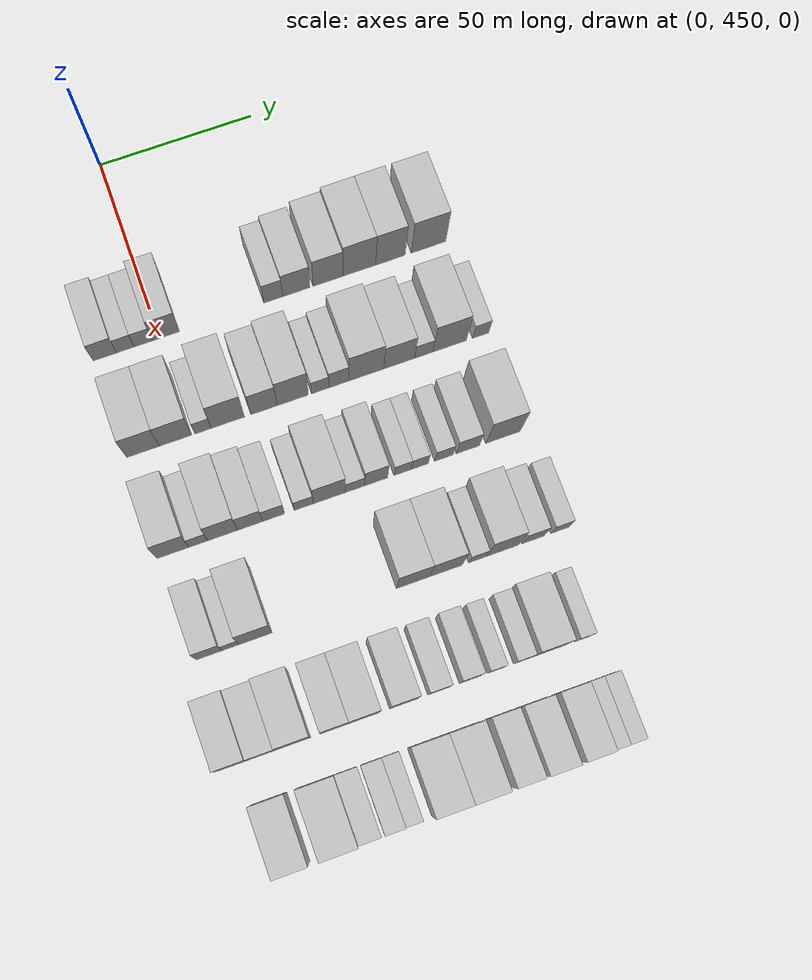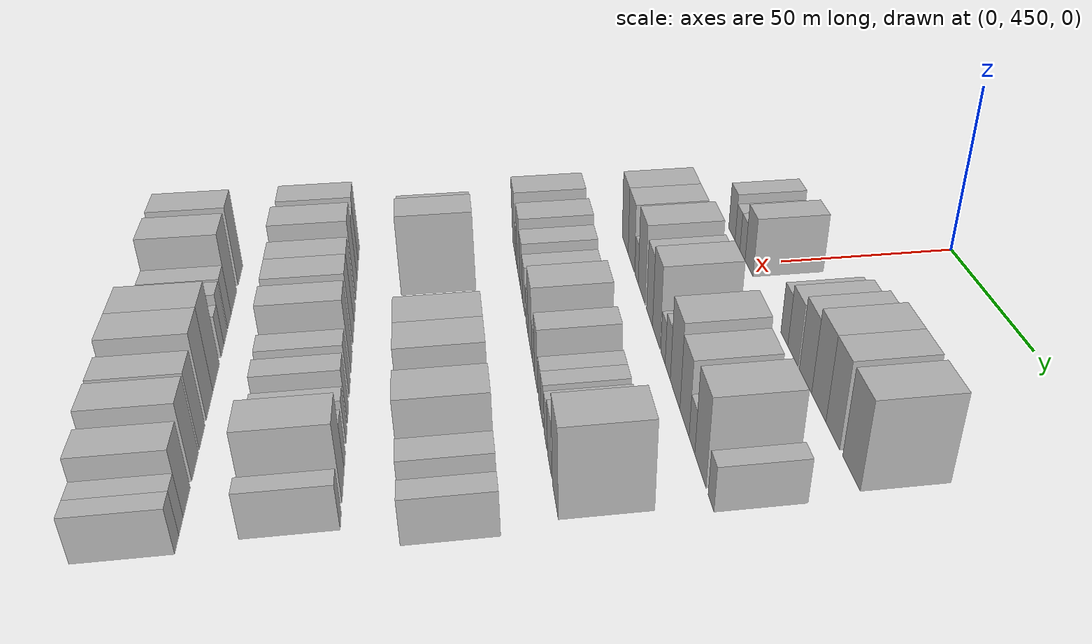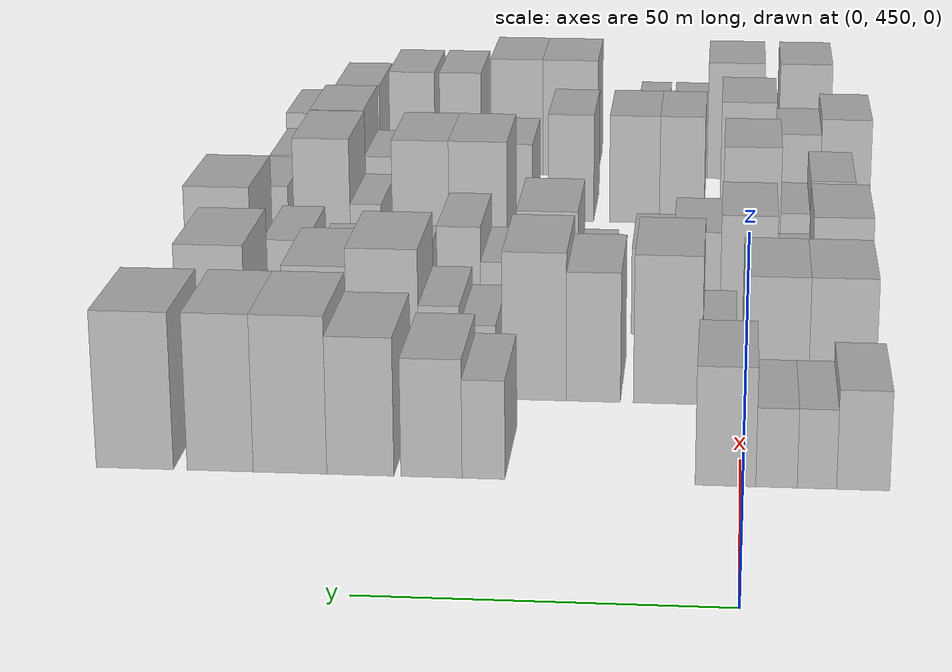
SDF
<sdf version="1.6">
 <world name="default">
  <model name="building_107">
   <static>1</static>
   <pose>50.0000 432.6618 0 0.000000 0.000000 0.000000</pose>
   <link name="link">
    <pose>0 0 7.50 0 0 0</pose>
    <collision name="collision"><geometry><box><size>20.0000 7.4876 15.0000</size></box></geometry></collision>
    <visual name="visual">
     <cast_shadows>0</cast_shadows>
     <geometry><box><size>20.0000 7.4876 15.0000</size></box></geometry>
     <material>
      <script>
       <uri>model://HANNAS_wall/materials/scripts</uri>
       <uri>model://HANNAS_wall/materials/textures</uri>
       <name>vrc/HANNAS_wall</name>
      </script>
     </material>
    </visual>
   </link>
  </model>
  <model name="building_108">
   <static>1</static>
   <pose>50.0000 439.1851 0 0.000000 0.000000 0.000000</pose>
   <link name="link">
    <pose>0 0 6.00 0 0 0</pose>
    <collision name="collision"><geometry><box><size>20.0000 5.5591 12.0000</size></box></geometry></collision>
    <visual name="visual">
     <cast_shadows>0</cast_shadows>
     <geometry><box><size>20.0000 5.5591 12.0000</size></box></geometry>
     <material>
      <script>
       <uri>model://HANNAS_wall/materials/scripts</uri>
       <uri>model://HANNAS_wall/materials/textures</uri>
       <name>vrc/HANNAS_wall</name>
      </script>
     </material>
    </visual>
   </link>
  </model>
  <model name="building_109">
   <static>1</static>
   <pose>50.0000 444.8984 0 0.000000 0.000000 0.000000</pose>
   <link name="link">
    <pose>0 0 6.00 0 0 0</pose>
    <collision name="collision"><geometry><box><size>20.0000 5.8676 12.0000</size></box></geometry></collision>
    <visual name="visual">
     <cast_shadows>0</cast_shadows>
     <geometry><box><size>20.0000 5.8676 12.0000</size></box></geometry>
     <material>
      <script>
       <uri>model://HANNAS_wall/materials/scripts</uri>
       <uri>model://HANNAS_wall/materials/textures</uri>
       <name>vrc/HANNAS_wall</name>
      </script>
     </material>
    </visual>
   </link>
  </model>
  <model name="building_110">
   <static>1</static>
   <pose>50.0000 452.1269 0 0.000000 0.000000 0.000000</pose>
   <link name="link">
    <pose>0 0 9.00 0 0 0</pose>
    <collision name="collision"><geometry><box><size>20.0000 8.5894 18.0000</size></box></geometry></collision>
    <visual name="visual">
     <cast_shadows>0</cast_shadows>
     <geometry><box><size>20.0000 8.5894 18.0000</size></box></geometry>
     <material>
      <script>
       <uri>model://HANNAS_wall/materials/scripts</uri>
       <uri>model://HANNAS_wall/materials/textures</uri>
       <name>vrc/HANNAS_wall</name>
      </script>
     </material>
    </visual>
   </link>
  </model>
  <model name="building_111">
   <static>1</static>
   <pose>50.0000 486.6656 0 0.000000 0.000000 0.000000</pose>
   <link name="link">
    <pose>0 0 7.50 0 0 0</pose>
    <collision name="collision"><geometry><box><size>20.0000 6.1626 15.0000</size></box></geometry></collision>
    <visual name="visual">
     <cast_shadows>0</cast_shadows>
     <geometry><box><size>20.0000 6.1626 15.0000</size></box></geometry>
     <material>
      <script>
       <uri>model://HANNAS_wall/materials/scripts</uri>
       <uri>model://HANNAS_wall/materials/textures</uri>
       <name>vrc/HANNAS_wall</name>
      </script>
     </material>
    </visual>
   </link>
  </model>
  <model name="building_112">
   <static>1</static>
   <pose>50.0000 494.1600 0 0.000000 0.000000 0.000000</pose>
   <link name="link">
    <pose>0 0 9.00 0 0 0</pose>
    <collision name="collision"><geometry><box><size>20.0000 8.8261 18.0000</size></box></geometry></collision>
    <visual name="visual">
     <cast_shadows>0</cast_shadows>
     <geometry><box><size>20.0000 8.8261 18.0000</size></box></geometry>
     <material>
      <script>
       <uri>model://HANNAS_wall/materials/scripts</uri>
       <uri>model://HANNAS_wall/materials/textures</uri>
       <name>vrc/HANNAS_wall</name>
      </script>
     </material>
    </visual>
   </link>
  </model>
  <model name="building_113">
   <static>1</static>
   <pose>50.0000 504.4298 0 0.000000 0.000000 0.000000</pose>
   <link name="link">
    <pose>0 0 10.50 0 0 0</pose>
    <collision name="collision"><geometry><box><size>20.0000 9.7135 21.0000</size></box></geometry></collision>
    <visual name="visual">
     <cast_shadows>0</cast_shadows>
     <geometry><box><size>20.0000 9.7135 21.0000</size></box></geometry>
     <material>
      <script>
       <uri>model://HANNAS_wall/materials/scripts</uri>
       <uri>model://HANNAS_wall/materials/textures</uri>
       <name>vrc/HANNAS_wall</name>
      </script>
     </material>
    </visual>
   </link>
  </model>
  <model name="building_114">
   <static>1</static>
   <pose>50.0000 514.6332 0 0.000000 0.000000 0.000000</pose>
   <link name="link">
    <pose>0 0 12.00 0 0 0</pose>
    <collision name="collision"><geometry><box><size>20.0000 10.6934 24.0000</size></box></geometry></collision>
    <visual name="visual">
     <cast_shadows>0</cast_shadows>
     <geometry><box><size>20.0000 10.6934 24.0000</size></box></geometry>
     <material>
      <script>
       <uri>model://HANNAS_wall/materials/scripts</uri>
       <uri>model://HANNAS_wall/materials/textures</uri>
       <name>vrc/HANNAS_wall</name>
      </script>
     </material>
    </visual>
   </link>
  </model>
  <model name="building_115">
   <static>1</static>
   <pose>50.0000 524.8079 0 0.000000 0.000000 0.000000</pose>
   <link name="link">
    <pose>0 0 12.00 0 0 0</pose>
    <collision name="collision"><geometry><box><size>20.0000 9.6559 24.0000</size></box></geometry></collision>
    <visual name="visual">
     <cast_shadows>0</cast_shadows>
     <geometry><box><size>20.0000 9.6559 24.0000</size></box></geometry>
     <material>
      <script>
       <uri>model://HANNAS_wall/materials/scripts</uri>
       <uri>model://HANNAS_wall/materials/textures</uri>
       <name>vrc/HANNAS_wall</name>
      </script>
     </material>
    </visual>
   </link>
  </model>
  <model name="building_116">
   <static>1</static>
   <pose>50.0000 537.2994 0 0.000000 0.000000 0.000000</pose>
   <link name="link">
    <pose>0 0 12.00 0 0 0</pose>
    <collision name="collision"><geometry><box><size>20.0000 11.3273 24.0000</size></box></geometry></collision>
    <visual name="visual">
     <cast_shadows>0</cast_shadows>
     <geometry><box><size>20.0000 11.3273 24.0000</size></box></geometry>
     <material>
      <script>
       <uri>model://HANNAS_wall/materials/scripts</uri>
       <uri>model://HANNAS_wall/materials/textures</uri>
       <name>vrc/HANNAS_wall</name>
      </script>
     </material>
    </visual>
   </link>
  </model>
  <model name="building_225">
   <static>1</static>
   <pose>82.0000 434.5215 0 0.000000 0.000000 0.000000</pose>
   <link name="link">
    <pose>0 0 10.50 0 0 0</pose>
    <collision name="collision"><geometry><box><size>20.0000 10.2824 21.0000</size></box></geometry></collision>
    <visual name="visual">
     <cast_shadows>0</cast_shadows>
     <geometry><box><size>20.0000 10.2824 21.0000</size></box></geometry>
     <material>
      <script>
       <uri>model://HANNAS_wall/materials/scripts</uri>
       <uri>model://HANNAS_wall/materials/textures</uri>
       <name>vrc/HANNAS_wall</name>
      </script>
     </material>
    </visual>
   </link>
  </model>
  <model name="building_226">
   <static>1</static>
   <pose>82.0000 444.7343 0 0.000000 0.000000 0.000000</pose>
   <link name="link">
    <pose>0 0 10.50 0 0 0</pose>
    <collision name="collision"><geometry><box><size>20.0000 10.1432 21.0000</size></box></geometry></collision>
    <visual name="visual">
     <cast_shadows>0</cast_shadows>
     <geometry><box><size>20.0000 10.1432 21.0000</size></box></geometry>
     <material>
      <script>
       <uri>model://HANNAS_wall/materials/scripts</uri>
       <uri>model://HANNAS_wall/materials/textures</uri>
       <name>vrc/HANNAS_wall</name>
      </script>
     </material>
    </visual>
   </link>
  </model>
  <model name="building_227">
   <static>1</static>
   <pose>82.0000 453.3990 0 0.000000 0.000000 0.000000</pose>
   <link name="link">
    <pose>0 0 6.00 0 0 0</pose>
    <collision name="collision"><geometry><box><size>20.0000 5.1863 12.0000</size></box></geometry></collision>
    <visual name="visual">
     <cast_shadows>0</cast_shadows>
     <geometry><box><size>20.0000 5.1863 12.0000</size></box></geometry>
     <material>
      <script>
       <uri>model://HANNAS_wall/materials/scripts</uri>
       <uri>model://HANNAS_wall/materials/textures</uri>
       <name>vrc/HANNAS_wall</name>
      </script>
     </material>
    </visual>
   </link>
  </model>
  <model name="building_228">
   <static>1</static>
   <pose>82.0000 461.2536 0 0.000000 0.000000 0.000000</pose>
   <link name="link">
    <pose>0 0 12.00 0 0 0</pose>
    <collision name="collision"><geometry><box><size>20.0000 10.5230 24.0000</size></box></geometry></collision>
    <visual name="visual">
     <cast_shadows>0</cast_shadows>
     <geometry><box><size>20.0000 10.5230 24.0000</size></box></geometry>
     <material>
      <script>
       <uri>model://HANNAS_wall/materials/scripts</uri>
       <uri>model://HANNAS_wall/materials/textures</uri>
       <name>vrc/HANNAS_wall</name>
      </script>
     </material>
    </visual>
   </link>
  </model>
  <model name="building_229">
   <static>1</static>
   <pose>82.0000 472.7178 0 0.000000 0.000000 0.000000</pose>
   <link name="link">
    <pose>0 0 10.50 0 0 0</pose>
    <collision name="collision"><geometry><box><size>20.0000 8.4054 21.0000</size></box></geometry></collision>
    <visual name="visual">
     <cast_shadows>0</cast_shadows>
     <geometry><box><size>20.0000 8.4054 21.0000</size></box></geometry>
     <material>
      <script>
       <uri>model://HANNAS_wall/materials/scripts</uri>
       <uri>model://HANNAS_wall/materials/textures</uri>
       <name>vrc/HANNAS_wall</name>
      </script>
     </material>
    </visual>
   </link>
  </model>
  <model name="building_230">
   <static>1</static>
   <pose>82.0000 481.8896 0 0.000000 0.000000 0.000000</pose>
   <link name="link">
    <pose>0 0 12.00 0 0 0</pose>
    <collision name="collision"><geometry><box><size>20.0000 9.9382 24.0000</size></box></geometry></collision>
    <visual name="visual">
     <cast_shadows>0</cast_shadows>
     <geometry><box><size>20.0000 9.9382 24.0000</size></box></geometry>
     <material>
      <script>
       <uri>model://HANNAS_wall/materials/scripts</uri>
       <uri>model://HANNAS_wall/materials/textures</uri>
       <name>vrc/HANNAS_wall</name>
      </script>
     </material>
    </visual>
   </link>
  </model>
  <model name="building_231">
   <static>1</static>
   <pose>82.0000 490.6509 0 0.000000 0.000000 0.000000</pose>
   <link name="link">
    <pose>0 0 6.00 0 0 0</pose>
    <collision name="collision"><geometry><box><size>20.0000 5.5843 12.0000</size></box></geometry></collision>
    <visual name="visual">
     <cast_shadows>0</cast_shadows>
     <geometry><box><size>20.0000 5.5843 12.0000</size></box></geometry>
     <material>
      <script>
       <uri>model://HANNAS_wall/materials/scripts</uri>
       <uri>model://HANNAS_wall/materials/textures</uri>
       <name>vrc/HANNAS_wall</name>
      </script>
     </material>
    </visual>
   </link>
  </model>
  <model name="building_232">
   <static>1</static>
   <pose>82.0000 496.6389 0 0.000000 0.000000 0.000000</pose>
   <link name="link">
    <pose>0 0 7.50 0 0 0</pose>
    <collision name="collision"><geometry><box><size>20.0000 6.3917 15.0000</size></box></geometry></collision>
    <visual name="visual">
     <cast_shadows>0</cast_shadows>
     <geometry><box><size>20.0000 6.3917 15.0000</size></box></geometry>
     <material>
      <script>
       <uri>model://HANNAS_wall/materials/scripts</uri>
       <uri>model://HANNAS_wall/materials/textures</uri>
       <name>vrc/HANNAS_wall</name>
      </script>
     </material>
    </visual>
   </link>
  </model>
  <model name="building_233">
   <static>1</static>
   <pose>82.0000 505.4357 0 0.000000 0.000000 0.000000</pose>
   <link name="link">
    <pose>0 0 12.00 0 0 0</pose>
    <collision name="collision"><geometry><box><size>20.0000 11.2019 24.0000</size></box></geometry></collision>
    <visual name="visual">
     <cast_shadows>0</cast_shadows>
     <geometry><box><size>20.0000 11.2019 24.0000</size></box></geometry>
     <material>
      <script>
       <uri>model://HANNAS_wall/materials/scripts</uri>
       <uri>model://HANNAS_wall/materials/textures</uri>
       <name>vrc/HANNAS_wall</name>
      </script>
     </material>
    </visual>
   </link>
  </model>
  <model name="building_234">
   <static>1</static>
   <pose>82.0000 516.0133 0 0.000000 0.000000 0.000000</pose>
   <link name="link">
    <pose>0 0 10.50 0 0 0</pose>
    <collision name="collision"><geometry><box><size>20.0000 9.9533 21.0000</size></box></geometry></collision>
    <visual name="visual">
     <cast_shadows>0</cast_shadows>
     <geometry><box><size>20.0000 9.9533 21.0000</size></box></geometry>
     <material>
      <script>
       <uri>model://HANNAS_wall/materials/scripts</uri>
       <uri>model://HANNAS_wall/materials/textures</uri>
       <name>vrc/HANNAS_wall</name>
      </script>
     </material>
    </visual>
   </link>
  </model>
  <model name="building_235">
   <static>1</static>
   <pose>82.0000 523.9376 0 0.000000 0.000000 0.000000</pose>
   <link name="link">
    <pose>0 0 6.00 0 0 0</pose>
    <collision name="collision"><geometry><box><size>20.0000 5.8953 12.0000</size></box></geometry></collision>
    <visual name="visual">
     <cast_shadows>0</cast_shadows>
     <geometry><box><size>20.0000 5.8953 12.0000</size></box></geometry>
     <material>
      <script>
       <uri>model://HANNAS_wall/materials/scripts</uri>
       <uri>model://HANNAS_wall/materials/textures</uri>
       <name>vrc/HANNAS_wall</name>
      </script>
     </material>
    </visual>
   </link>
  </model>
  <model name="building_236">
   <static>1</static>
   <pose>82.0000 532.3138 0 0.000000 0.000000 0.000000</pose>
   <link name="link">
    <pose>0 0 12.00 0 0 0</pose>
    <collision name="collision"><geometry><box><size>20.0000 10.8572 24.0000</size></box></geometry></collision>
    <visual name="visual">
     <cast_shadows>0</cast_shadows>
     <geometry><box><size>20.0000 10.8572 24.0000</size></box></geometry>
     <material>
      <script>
       <uri>model://HANNAS_wall/materials/scripts</uri>
       <uri>model://HANNAS_wall/materials/textures</uri>
       <name>vrc/HANNAS_wall</name>
      </script>
     </material>
    </visual>
   </link>
  </model>
  <model name="building_237">
   <static>1</static>
   <pose>82.0000 542.3658 0 0.000000 0.000000 0.000000</pose>
   <link name="link">
    <pose>0 0 6.00 0 0 0</pose>
    <collision name="collision"><geometry><box><size>20.0000 5.2468 12.0000</size></box></geometry></collision>
    <visual name="visual">
     <cast_shadows>0</cast_shadows>
     <geometry><box><size>20.0000 5.2468 12.0000</size></box></geometry>
     <material>
      <script>
       <uri>model://HANNAS_wall/materials/scripts</uri>
       <uri>model://HANNAS_wall/materials/textures</uri>
       <name>vrc/HANNAS_wall</name>
      </script>
     </material>
    </visual>
   </link>
  </model>
  <model name="building_342">
   <static>1</static>
   <pose>114.0000 433.4911 0 0.000000 0.000000 0.000000</pose>
   <link name="link">
    <pose>0 0 10.50 0 0 0</pose>
    <collision name="collision"><geometry><box><size>20.0000 9.8283 21.0000</size></box></geometry></collision>
    <visual name="visual">
     <cast_shadows>0</cast_shadows>
     <geometry><box><size>20.0000 9.8283 21.0000</size></box></geometry>
     <material>
      <script>
       <uri>model://HANNAS_wall/materials/scripts</uri>
       <uri>model://HANNAS_wall/materials/textures</uri>
       <name>vrc/HANNAS_wall</name>
      </script>
     </material>
    </visual>
   </link>
  </model>
  <model name="building_343">
   <static>1</static>
   <pose>114.0000 441.3180 0 0.000000 0.000000 0.000000</pose>
   <link name="link">
    <pose>0 0 6.00 0 0 0</pose>
    <collision name="collision"><geometry><box><size>20.0000 5.8255 12.0000</size></box></geometry></collision>
    <visual name="visual">
     <cast_shadows>0</cast_shadows>
     <geometry><box><size>20.0000 5.8255 12.0000</size></box></geometry>
     <material>
      <script>
       <uri>model://HANNAS_wall/materials/scripts</uri>
       <uri>model://HANNAS_wall/materials/textures</uri>
       <name>vrc/HANNAS_wall</name>
      </script>
     </material>
    </visual>
   </link>
  </model>
  <model name="building_344">
   <static>1</static>
   <pose>114.0000 448.8586 0 0.000000 0.000000 0.000000</pose>
   <link name="link">
    <pose>0 0 10.50 0 0 0</pose>
    <collision name="collision"><geometry><box><size>20.0000 9.2557 21.0000</size></box></geometry></collision>
    <visual name="visual">
     <cast_shadows>0</cast_shadows>
     <geometry><box><size>20.0000 9.2557 21.0000</size></box></geometry>
     <material>
      <script>
       <uri>model://HANNAS_wall/materials/scripts</uri>
       <uri>model://HANNAS_wall/materials/textures</uri>
       <name>vrc/HANNAS_wall</name>
      </script>
     </material>
    </visual>
   </link>
  </model>
  <model name="building_345">
   <static>1</static>
   <pose>114.0000 457.4132 0 0.000000 0.000000 0.000000</pose>
   <link name="link">
    <pose>0 0 9.00 0 0 0</pose>
    <collision name="collision"><geometry><box><size>20.0000 7.8535 18.0000</size></box></geometry></collision>
    <visual name="visual">
     <cast_shadows>0</cast_shadows>
     <geometry><box><size>20.0000 7.8535 18.0000</size></box></geometry>
     <material>
      <script>
       <uri>model://HANNAS_wall/materials/scripts</uri>
       <uri>model://HANNAS_wall/materials/textures</uri>
       <name>vrc/HANNAS_wall</name>
      </script>
     </material>
    </visual>
   </link>
  </model>
  <model name="building_346">
   <static>1</static>
   <pose>114.0000 464.7631 0 0.000000 0.000000 0.000000</pose>
   <link name="link">
    <pose>0 0 7.50 0 0 0</pose>
    <collision name="collision"><geometry><box><size>20.0000 6.8462 15.0000</size></box></geometry></collision>
    <visual name="visual">
     <cast_shadows>0</cast_shadows>
     <geometry><box><size>20.0000 6.8462 15.0000</size></box></geometry>
     <material>
      <script>
       <uri>model://HANNAS_wall/materials/scripts</uri>
       <uri>model://HANNAS_wall/materials/textures</uri>
       <name>vrc/HANNAS_wall</name>
      </script>
     </material>
    </visual>
   </link>
  </model>
  <model name="building_347">
   <static>1</static>
   <pose>114.0000 474.1584 0 0.000000 0.000000 0.000000</pose>
   <link name="link">
    <pose>0 0 6.00 0 0 0</pose>
    <collision name="collision"><geometry><box><size>20.0000 5.9444 12.0000</size></box></geometry></collision>
    <visual name="visual">
     <cast_shadows>0</cast_shadows>
     <geometry><box><size>20.0000 5.9444 12.0000</size></box></geometry>
     <material>
      <script>
       <uri>model://HANNAS_wall/materials/scripts</uri>
       <uri>model://HANNAS_wall/materials/textures</uri>
       <name>vrc/HANNAS_wall</name>
      </script>
     </material>
    </visual>
   </link>
  </model>
  <model name="building_348">
   <static>1</static>
   <pose>114.0000 482.2436 0 0.000000 0.000000 0.000000</pose>
   <link name="link">
    <pose>0 0 10.50 0 0 0</pose>
    <collision name="collision"><geometry><box><size>20.0000 10.2260 21.0000</size></box></geometry></collision>
    <visual name="visual">
     <cast_shadows>0</cast_shadows>
     <geometry><box><size>20.0000 10.2260 21.0000</size></box></geometry>
     <material>
      <script>
       <uri>model://HANNAS_wall/materials/scripts</uri>
       <uri>model://HANNAS_wall/materials/textures</uri>
       <name>vrc/HANNAS_wall</name>
      </script>
     </material>
    </visual>
   </link>
  </model>
  <model name="building_349">
   <static>1</static>
   <pose>114.0000 490.3469 0 0.000000 0.000000 0.000000</pose>
   <link name="link">
    <pose>0 0 6.00 0 0 0</pose>
    <collision name="collision"><geometry><box><size>20.0000 5.9806 12.0000</size></box></geometry></collision>
    <visual name="visual">
     <cast_shadows>0</cast_shadows>
     <geometry><box><size>20.0000 5.9806 12.0000</size></box></geometry>
     <material>
      <script>
       <uri>model://HANNAS_wall/materials/scripts</uri>
       <uri>model://HANNAS_wall/materials/textures</uri>
       <name>vrc/HANNAS_wall</name>
      </script>
     </material>
    </visual>
   </link>
  </model>
  <model name="building_350">
   <static>1</static>
   <pose>114.0000 496.9845 0 0.000000 0.000000 0.000000</pose>
   <link name="link">
    <pose>0 0 9.00 0 0 0</pose>
    <collision name="collision"><geometry><box><size>20.0000 7.2946 18.0000</size></box></geometry></collision>
    <visual name="visual">
     <cast_shadows>0</cast_shadows>
     <geometry><box><size>20.0000 7.2946 18.0000</size></box></geometry>
     <material>
      <script>
       <uri>model://HANNAS_wall/materials/scripts</uri>
       <uri>model://HANNAS_wall/materials/textures</uri>
       <name>vrc/HANNAS_wall</name>
      </script>
     </material>
    </visual>
   </link>
  </model>
  <model name="building_351">
   <static>1</static>
   <pose>114.0000 505.4055 0 0.000000 0.000000 0.000000</pose>
   <link name="link">
    <pose>0 0 6.00 0 0 0</pose>
    <collision name="collision"><geometry><box><size>20.0000 5.5473 12.0000</size></box></geometry></collision>
    <visual name="visual">
     <cast_shadows>0</cast_shadows>
     <geometry><box><size>20.0000 5.5473 12.0000</size></box></geometry>
     <material>
      <script>
       <uri>model://HANNAS_wall/materials/scripts</uri>
       <uri>model://HANNAS_wall/materials/textures</uri>
       <name>vrc/HANNAS_wall</name>
      </script>
     </material>
    </visual>
   </link>
  </model>
  <model name="building_352">
   <static>1</static>
   <pose>114.0000 510.8718 0 0.000000 0.000000 0.000000</pose>
   <link name="link">
    <pose>0 0 6.00 0 0 0</pose>
    <collision name="collision"><geometry><box><size>20.0000 5.3852 12.0000</size></box></geometry></collision>
    <visual name="visual">
     <cast_shadows>0</cast_shadows>
     <geometry><box><size>20.0000 5.3852 12.0000</size></box></geometry>
     <material>
      <script>
       <uri>model://HANNAS_wall/materials/scripts</uri>
       <uri>model://HANNAS_wall/materials/textures</uri>
       <name>vrc/HANNAS_wall</name>
      </script>
     </material>
    </visual>
   </link>
  </model>
  <model name="building_353">
   <static>1</static>
   <pose>114.0000 518.5120 0 0.000000 0.000000 0.000000</pose>
   <link name="link">
    <pose>0 0 6.00 0 0 0</pose>
    <collision name="collision"><geometry><box><size>20.0000 5.8952 12.0000</size></box></geometry></collision>
    <visual name="visual">
     <cast_shadows>0</cast_shadows>
     <geometry><box><size>20.0000 5.8952 12.0000</size></box></geometry>
     <material>
      <script>
       <uri>model://HANNAS_wall/materials/scripts</uri>
       <uri>model://HANNAS_wall/materials/textures</uri>
       <name>vrc/HANNAS_wall</name>
      </script>
     </material>
    </visual>
   </link>
  </model>
  <model name="building_354">
   <static>1</static>
   <pose>114.0000 526.1745 0 0.000000 0.000000 0.000000</pose>
   <link name="link">
    <pose>0 0 7.50 0 0 0</pose>
    <collision name="collision"><geometry><box><size>20.0000 7.4298 15.0000</size></box></geometry></collision>
    <visual name="visual">
     <cast_shadows>0</cast_shadows>
     <geometry><box><size>20.0000 7.4298 15.0000</size></box></geometry>
     <material>
      <script>
       <uri>model://HANNAS_wall/materials/scripts</uri>
       <uri>model://HANNAS_wall/materials/textures</uri>
       <name>vrc/HANNAS_wall</name>
      </script>
     </material>
    </visual>
   </link>
  </model>
  <model name="building_355">
   <static>1</static>
   <pose>114.0000 537.4247 0 0.000000 0.000000 0.000000</pose>
   <link name="link">
    <pose>0 0 12.00 0 0 0</pose>
    <collision name="collision"><geometry><box><size>20.0000 11.0706 24.0000</size></box></geometry></collision>
    <visual name="visual">
     <cast_shadows>0</cast_shadows>
     <geometry><box><size>20.0000 11.0706 24.0000</size></box></geometry>
     <material>
      <script>
       <uri>model://HANNAS_wall/materials/scripts</uri>
       <uri>model://HANNAS_wall/materials/textures</uri>
       <name>vrc/HANNAS_wall</name>
      </script>
     </material>
    </visual>
   </link>
  </model>
  <model name="building_460">
   <static>1</static>
   <pose>146.0000 434.0739 0 0.000000 0.000000 0.000000</pose>
   <link name="link">
    <pose>0 0 9.00 0 0 0</pose>
    <collision name="collision"><geometry><box><size>20.0000 7.8460 18.0000</size></box></geometry></collision>
    <visual name="visual">
     <cast_shadows>0</cast_shadows>
     <geometry><box><size>20.0000 7.8460 18.0000</size></box></geometry>
     <material>
      <script>
       <uri>model://HANNAS_wall/materials/scripts</uri>
       <uri>model://HANNAS_wall/materials/textures</uri>
       <name>vrc/HANNAS_wall</name>
      </script>
     </material>
    </visual>
   </link>
  </model>
  <model name="building_461">
   <static>1</static>
   <pose>146.0000 440.5929 0 0.000000 0.000000 0.000000</pose>
   <link name="link">
    <pose>0 0 6.00 0 0 0</pose>
    <collision name="collision"><geometry><box><size>20.0000 5.1919 12.0000</size></box></geometry></collision>
    <visual name="visual">
     <cast_shadows>0</cast_shadows>
     <geometry><box><size>20.0000 5.1919 12.0000</size></box></geometry>
     <material>
      <script>
       <uri>model://HANNAS_wall/materials/scripts</uri>
       <uri>model://HANNAS_wall/materials/textures</uri>
       <name>vrc/HANNAS_wall</name>
      </script>
     </material>
    </visual>
   </link>
  </model>
  <model name="building_462">
   <static>1</static>
   <pose>146.0000 448.2383 0 0.000000 0.000000 0.000000</pose>
   <link name="link">
    <pose>0 0 12.00 0 0 0</pose>
    <collision name="collision"><geometry><box><size>20.0000 10.0990 24.0000</size></box></geometry></collision>
    <visual name="visual">
     <cast_shadows>0</cast_shadows>
     <geometry><box><size>20.0000 10.0990 24.0000</size></box></geometry>
     <material>
      <script>
       <uri>model://HANNAS_wall/materials/scripts</uri>
       <uri>model://HANNAS_wall/materials/textures</uri>
       <name>vrc/HANNAS_wall</name>
      </script>
     </material>
    </visual>
   </link>
  </model>
  <model name="building_463">
   <static>1</static>
   <pose>146.0000 496.9704 0 0.000000 0.000000 0.000000</pose>
   <link name="link">
    <pose>0 0 12.00 0 0 0</pose>
    <collision name="collision"><geometry><box><size>20.0000 10.4551 24.0000</size></box></geometry></collision>
    <visual name="visual">
     <cast_shadows>0</cast_shadows>
     <geometry><box><size>20.0000 10.4551 24.0000</size></box></geometry>
     <material>
      <script>
       <uri>model://HANNAS_wall/materials/scripts</uri>
       <uri>model://HANNAS_wall/materials/textures</uri>
       <name>vrc/HANNAS_wall</name>
      </script>
     </material>
    </visual>
   </link>
  </model>
  <model name="building_464">
   <static>1</static>
   <pose>146.0000 507.2742 0 0.000000 0.000000 0.000000</pose>
   <link name="link">
    <pose>0 0 12.00 0 0 0</pose>
    <collision name="collision"><geometry><box><size>20.0000 10.1525 24.0000</size></box></geometry></collision>
    <visual name="visual">
     <cast_shadows>0</cast_shadows>
     <geometry><box><size>20.0000 10.1525 24.0000</size></box></geometry>
     <material>
      <script>
       <uri>model://HANNAS_wall/materials/scripts</uri>
       <uri>model://HANNAS_wall/materials/textures</uri>
       <name>vrc/HANNAS_wall</name>
      </script>
     </material>
    </visual>
   </link>
  </model>
  <model name="building_465">
   <static>1</static>
   <pose>146.0000 517.1633 0 0.000000 0.000000 0.000000</pose>
   <link name="link">
    <pose>0 0 6.00 0 0 0</pose>
    <collision name="collision"><geometry><box><size>20.0000 5.6256 12.0000</size></box></geometry></collision>
    <visual name="visual">
     <cast_shadows>0</cast_shadows>
     <geometry><box><size>20.0000 5.6256 12.0000</size></box></geometry>
     <material>
      <script>
       <uri>model://HANNAS_wall/materials/scripts</uri>
       <uri>model://HANNAS_wall/materials/textures</uri>
       <name>vrc/HANNAS_wall</name>
      </script>
     </material>
    </visual>
   </link>
  </model>
  <model name="building_466">
   <static>1</static>
   <pose>146.0000 525.0642 0 0.000000 0.000000 0.000000</pose>
   <link name="link">
    <pose>0 0 12.00 0 0 0</pose>
    <collision name="collision"><geometry><box><size>20.0000 10.1762 24.0000</size></box></geometry></collision>
    <visual name="visual">
     <cast_shadows>0</cast_shadows>
     <geometry><box><size>20.0000 10.1762 24.0000</size></box></geometry>
     <material>
      <script>
       <uri>model://HANNAS_wall/materials/scripts</uri>
       <uri>model://HANNAS_wall/materials/textures</uri>
       <name>vrc/HANNAS_wall</name>
      </script>
     </material>
    </visual>
   </link>
  </model>
  <model name="building_467">
   <static>1</static>
   <pose>146.0000 534.6964 0 0.000000 0.000000 0.000000</pose>
   <link name="link">
    <pose>0 0 7.50 0 0 0</pose>
    <collision name="collision"><geometry><box><size>20.0000 7.0880 15.0000</size></box></geometry></collision>
    <visual name="visual">
     <cast_shadows>0</cast_shadows>
     <geometry><box><size>20.0000 7.0880 15.0000</size></box></geometry>
     <material>
      <script>
       <uri>model://HANNAS_wall/materials/scripts</uri>
       <uri>model://HANNAS_wall/materials/textures</uri>
       <name>vrc/HANNAS_wall</name>
      </script>
     </material>
    </visual>
   </link>
  </model>
  <model name="building_468">
   <static>1</static>
   <pose>146.0000 543.1657 0 0.000000 0.000000 0.000000</pose>
   <link name="link">
    <pose>0 0 6.00 0 0 0</pose>
    <collision name="collision"><geometry><box><size>20.0000 5.8506 12.0000</size></box></geometry></collision>
    <visual name="visual">
     <cast_shadows>0</cast_shadows>
     <geometry><box><size>20.0000 5.8506 12.0000</size></box></geometry>
     <material>
      <script>
       <uri>model://HANNAS_wall/materials/scripts</uri>
       <uri>model://HANNAS_wall/materials/textures</uri>
       <name>vrc/HANNAS_wall</name>
      </script>
     </material>
    </visual>
   </link>
  </model>
  <model name="building_576">
   <static>1</static>
   <pose>178.0000 430.4662 0 0.000000 0.000000 0.000000</pose>
   <link name="link">
    <pose>0 0 10.50 0 0 0</pose>
    <collision name="collision"><geometry><box><size>20.0000 9.3795 21.0000</size></box></geometry></collision>
    <visual name="visual">
     <cast_shadows>0</cast_shadows>
     <geometry><box><size>20.0000 9.3795 21.0000</size></box></geometry>
     <material>
      <script>
       <uri>model://HANNAS_wall/materials/scripts</uri>
       <uri>model://HANNAS_wall/materials/textures</uri>
       <name>vrc/HANNAS_wall</name>
      </script>
     </material>
    </visual>
   </link>
  </model>
  <model name="building_577">
   <static>1</static>
   <pose>178.0000 439.4199 0 0.000000 0.000000 0.000000</pose>
   <link name="link">
    <pose>0 0 9.00 0 0 0</pose>
    <collision name="collision"><geometry><box><size>20.0000 8.5279 18.0000</size></box></geometry></collision>
    <visual name="visual">
     <cast_shadows>0</cast_shadows>
     <geometry><box><size>20.0000 8.5279 18.0000</size></box></geometry>
     <material>
      <script>
       <uri>model://HANNAS_wall/materials/scripts</uri>
       <uri>model://HANNAS_wall/materials/textures</uri>
       <name>vrc/HANNAS_wall</name>
      </script>
     </material>
    </visual>
   </link>
  </model>
  <model name="building_578">
   <static>1</static>
   <pose>178.0000 448.8284 0 0.000000 0.000000 0.000000</pose>
   <link name="link">
    <pose>0 0 12.00 0 0 0</pose>
    <collision name="collision"><geometry><box><size>20.0000 10.2892 24.0000</size></box></geometry></collision>
    <visual name="visual">
     <cast_shadows>0</cast_shadows>
     <geometry><box><size>20.0000 10.2892 24.0000</size></box></geometry>
     <material>
      <script>
       <uri>model://HANNAS_wall/materials/scripts</uri>
       <uri>model://HANNAS_wall/materials/textures</uri>
       <name>vrc/HANNAS_wall</name>
      </script>
     </material>
    </visual>
   </link>
  </model>
  <model name="building_579">
   <static>1</static>
   <pose>178.0000 461.2167 0 0.000000 0.000000 0.000000</pose>
   <link name="link">
    <pose>0 0 10.50 0 0 0</pose>
    <collision name="collision"><geometry><box><size>20.0000 8.4873 21.0000</size></box></geometry></collision>
    <visual name="visual">
     <cast_shadows>0</cast_shadows>
     <geometry><box><size>20.0000 8.4873 21.0000</size></box></geometry>
     <material>
      <script>
       <uri>model://HANNAS_wall/materials/scripts</uri>
       <uri>model://HANNAS_wall/materials/textures</uri>
       <name>vrc/HANNAS_wall</name>
      </script>
     </material>
    </visual>
   </link>
  </model>
  <model name="building_580">
   <static>1</static>
   <pose>178.0000 470.2285 0 0.000000 0.000000 0.000000</pose>
   <link name="link">
    <pose>0 0 10.50 0 0 0</pose>
    <collision name="collision"><geometry><box><size>20.0000 9.5364 21.0000</size></box></geometry></collision>
    <visual name="visual">
     <cast_shadows>0</cast_shadows>
     <geometry><box><size>20.0000 9.5364 21.0000</size></box></geometry>
     <material>
      <script>
       <uri>model://HANNAS_wall/materials/scripts</uri>
       <uri>model://HANNAS_wall/materials/textures</uri>
       <name>vrc/HANNAS_wall</name>
      </script>
     </material>
    </visual>
   </link>
  </model>
  <model name="building_581">
   <static>1</static>
   <pose>178.0000 482.3483 0 0.000000 0.000000 0.000000</pose>
   <link name="link">
    <pose>0 0 10.50 0 0 0</pose>
    <collision name="collision"><geometry><box><size>20.0000 8.7032 21.0000</size></box></geometry></collision>
    <visual name="visual">
     <cast_shadows>0</cast_shadows>
     <geometry><box><size>20.0000 8.7032 21.0000</size></box></geometry>
     <material>
      <script>
       <uri>model://HANNAS_wall/materials/scripts</uri>
       <uri>model://HANNAS_wall/materials/textures</uri>
       <name>vrc/HANNAS_wall</name>
      </script>
     </material>
    </visual>
   </link>
  </model>
  <model name="building_582">
   <static>1</static>
   <pose>178.0000 493.0768 0 0.000000 0.000000 0.000000</pose>
   <link name="link">
    <pose>0 0 7.50 0 0 0</pose>
    <collision name="collision"><geometry><box><size>20.0000 6.7538 15.0000</size></box></geometry></collision>
    <visual name="visual">
     <cast_shadows>0</cast_shadows>
     <geometry><box><size>20.0000 6.7538 15.0000</size></box></geometry>
     <material>
      <script>
       <uri>model://HANNAS_wall/materials/scripts</uri>
       <uri>model://HANNAS_wall/materials/textures</uri>
       <name>vrc/HANNAS_wall</name>
      </script>
     </material>
    </visual>
   </link>
  </model>
  <model name="building_583">
   <static>1</static>
   <pose>178.0000 502.7357 0 0.000000 0.000000 0.000000</pose>
   <link name="link">
    <pose>0 0 7.50 0 0 0</pose>
    <collision name="collision"><geometry><box><size>20.0000 6.5640 15.0000</size></box></geometry></collision>
    <visual name="visual">
     <cast_shadows>0</cast_shadows>
     <geometry><box><size>20.0000 6.5640 15.0000</size></box></geometry>
     <material>
      <script>
       <uri>model://HANNAS_wall/materials/scripts</uri>
       <uri>model://HANNAS_wall/materials/textures</uri>
       <name>vrc/HANNAS_wall</name>
      </script>
     </material>
    </visual>
   </link>
  </model>
  <model name="building_584">
   <static>1</static>
   <pose>178.0000 510.6145 0 0.000000 0.000000 0.000000</pose>
   <link name="link">
    <pose>0 0 6.00 0 0 0</pose>
    <collision name="collision"><geometry><box><size>20.0000 5.1936 12.0000</size></box></geometry></collision>
    <visual name="visual">
     <cast_shadows>0</cast_shadows>
     <geometry><box><size>20.0000 5.1936 12.0000</size></box></geometry>
     <material>
      <script>
       <uri>model://HANNAS_wall/materials/scripts</uri>
       <uri>model://HANNAS_wall/materials/textures</uri>
       <name>vrc/HANNAS_wall</name>
      </script>
     </material>
    </visual>
   </link>
  </model>
  <model name="building_585">
   <static>1</static>
   <pose>178.0000 519.1152 0 0.000000 0.000000 0.000000</pose>
   <link name="link">
    <pose>0 0 6.00 0 0 0</pose>
    <collision name="collision"><geometry><box><size>20.0000 5.8079 12.0000</size></box></geometry></collision>
    <visual name="visual">
     <cast_shadows>0</cast_shadows>
     <geometry><box><size>20.0000 5.8079 12.0000</size></box></geometry>
     <material>
      <script>
       <uri>model://HANNAS_wall/materials/scripts</uri>
       <uri>model://HANNAS_wall/materials/textures</uri>
       <name>vrc/HANNAS_wall</name>
      </script>
     </material>
    </visual>
   </link>
  </model>
  <model name="building_586">
   <static>1</static>
   <pose>178.0000 527.1333 0 0.000000 0.000000 0.000000</pose>
   <link name="link">
    <pose>0 0 10.50 0 0 0</pose>
    <collision name="collision"><geometry><box><size>20.0000 10.2283 21.0000</size></box></geometry></collision>
    <visual name="visual">
     <cast_shadows>0</cast_shadows>
     <geometry><box><size>20.0000 10.2283 21.0000</size></box></geometry>
     <material>
      <script>
       <uri>model://HANNAS_wall/materials/scripts</uri>
       <uri>model://HANNAS_wall/materials/textures</uri>
       <name>vrc/HANNAS_wall</name>
      </script>
     </material>
    </visual>
   </link>
  </model>
  <model name="building_587">
   <static>1</static>
   <pose>178.0000 537.6657 0 0.000000 0.000000 0.000000</pose>
   <link name="link">
    <pose>0 0 6.00 0 0 0</pose>
    <collision name="collision"><geometry><box><size>20.0000 4.8365 12.0000</size></box></geometry></collision>
    <visual name="visual">
     <cast_shadows>0</cast_shadows>
     <geometry><box><size>20.0000 4.8365 12.0000</size></box></geometry>
     <material>
      <script>
       <uri>model://HANNAS_wall/materials/scripts</uri>
       <uri>model://HANNAS_wall/materials/textures</uri>
       <name>vrc/HANNAS_wall</name>
      </script>
     </material>
    </visual>
   </link>
  </model>
  <model name="building_693">
   <static>1</static>
   <pose>210.0000 437.3504 0 0.000000 0.000000 0.000000</pose>
   <link name="link">
    <pose>0 0 12.00 0 0 0</pose>
    <collision name="collision"><geometry><box><size>20.0000 10.3813 24.0000</size></box></geometry></collision>
    <visual name="visual">
     <cast_shadows>0</cast_shadows>
     <geometry><box><size>20.0000 10.3813 24.0000</size></box></geometry>
     <material>
      <script>
       <uri>model://HANNAS_wall/materials/scripts</uri>
       <uri>model://HANNAS_wall/materials/textures</uri>
       <name>vrc/HANNAS_wall</name>
      </script>
     </material>
    </visual>
   </link>
  </model>
  <model name="building_694">
   <static>1</static>
   <pose>210.0000 451.1724 0 0.000000 0.000000 0.000000</pose>
   <link name="link">
    <pose>0 0 12.00 0 0 0</pose>
    <collision name="collision"><geometry><box><size>20.0000 11.2627 24.0000</size></box></geometry></collision>
    <visual name="visual">
     <cast_shadows>0</cast_shadows>
     <geometry><box><size>20.0000 11.2627 24.0000</size></box></geometry>
     <material>
      <script>
       <uri>model://HANNAS_wall/materials/scripts</uri>
       <uri>model://HANNAS_wall/materials/textures</uri>
       <name>vrc/HANNAS_wall</name>
      </script>
     </material>
    </visual>
   </link>
  </model>
  <model name="building_695">
   <static>1</static>
   <pose>210.0000 460.2119 0 0.000000 0.000000 0.000000</pose>
   <link name="link">
    <pose>0 0 7.50 0 0 0</pose>
    <collision name="collision"><geometry><box><size>20.0000 6.8163 15.0000</size></box></geometry></collision>
    <visual name="visual">
     <cast_shadows>0</cast_shadows>
     <geometry><box><size>20.0000 6.8163 15.0000</size></box></geometry>
     <material>
      <script>
       <uri>model://HANNAS_wall/materials/scripts</uri>
       <uri>model://HANNAS_wall/materials/textures</uri>
       <name>vrc/HANNAS_wall</name>
      </script>
     </material>
    </visual>
   </link>
  </model>
  <model name="building_696">
   <static>1</static>
   <pose>210.0000 467.6983 0 0.000000 0.000000 0.000000</pose>
   <link name="link">
    <pose>0 0 7.50 0 0 0</pose>
    <collision name="collision"><geometry><box><size>20.0000 6.1564 15.0000</size></box></geometry></collision>
    <visual name="visual">
     <cast_shadows>0</cast_shadows>
     <geometry><box><size>20.0000 6.1564 15.0000</size></box></geometry>
     <material>
      <script>
       <uri>model://HANNAS_wall/materials/scripts</uri>
       <uri>model://HANNAS_wall/materials/textures</uri>
       <name>vrc/HANNAS_wall</name>
      </script>
     </material>
    </visual>
   </link>
  </model>
  <model name="building_697">
   <static>1</static>
   <pose>210.0000 473.3887 0 0.000000 0.000000 0.000000</pose>
   <link name="link">
    <pose>0 0 6.00 0 0 0</pose>
    <collision name="collision"><geometry><box><size>20.0000 5.2244 12.0000</size></box></geometry></collision>
    <visual name="visual">
     <cast_shadows>0</cast_shadows>
     <geometry><box><size>20.0000 5.2244 12.0000</size></box></geometry>
     <material>
      <script>
       <uri>model://HANNAS_wall/materials/scripts</uri>
       <uri>model://HANNAS_wall/materials/textures</uri>
       <name>vrc/HANNAS_wall</name>
      </script>
     </material>
    </visual>
   </link>
  </model>
  <model name="building_698">
   <static>1</static>
   <pose>210.0000 484.5731 0 0.000000 0.000000 0.000000</pose>
   <link name="link">
    <pose>0 0 12.00 0 0 0</pose>
    <collision name="collision"><geometry><box><size>20.0000 11.1444 24.0000</size></box></geometry></collision>
    <visual name="visual">
     <cast_shadows>0</cast_shadows>
     <geometry><box><size>20.0000 11.1444 24.0000</size></box></geometry>
     <material>
      <script>
       <uri>model://HANNAS_wall/materials/scripts</uri>
       <uri>model://HANNAS_wall/materials/textures</uri>
       <name>vrc/HANNAS_wall</name>
      </script>
     </material>
    </visual>
   </link>
  </model>
  <model name="building_699">
   <static>1</static>
   <pose>210.0000 495.4074 0 0.000000 0.000000 0.000000</pose>
   <link name="link">
    <pose>0 0 12.00 0 0 0</pose>
    <collision name="collision"><geometry><box><size>20.0000 10.5243 24.0000</size></box></geometry></collision>
    <visual name="visual">
     <cast_shadows>0</cast_shadows>
     <geometry><box><size>20.0000 10.5243 24.0000</size></box></geometry>
     <material>
      <script>
       <uri>model://HANNAS_wall/materials/scripts</uri>
       <uri>model://HANNAS_wall/materials/textures</uri>
       <name>vrc/HANNAS_wall</name>
      </script>
     </material>
    </visual>
   </link>
  </model>
  <model name="building_700">
   <static>1</static>
   <pose>210.0000 506.9001 0 0.000000 0.000000 0.000000</pose>
   <link name="link">
    <pose>0 0 10.50 0 0 0</pose>
    <collision name="collision"><geometry><box><size>20.0000 8.4611 21.0000</size></box></geometry></collision>
    <visual name="visual">
     <cast_shadows>0</cast_shadows>
     <geometry><box><size>20.0000 8.4611 21.0000</size></box></geometry>
     <material>
      <script>
       <uri>model://HANNAS_wall/materials/scripts</uri>
       <uri>model://HANNAS_wall/materials/textures</uri>
       <name>vrc/HANNAS_wall</name>
      </script>
     </material>
    </visual>
   </link>
  </model>
  <model name="building_701">
   <static>1</static>
   <pose>210.0000 516.7550 0 0.000000 0.000000 0.000000</pose>
   <link name="link">
    <pose>0 0 10.50 0 0 0</pose>
    <collision name="collision"><geometry><box><size>20.0000 9.2488 21.0000</size></box></geometry></collision>
    <visual name="visual">
     <cast_shadows>0</cast_shadows>
     <geometry><box><size>20.0000 9.2488 21.0000</size></box></geometry>
     <material>
      <script>
       <uri>model://HANNAS_wall/materials/scripts</uri>
       <uri>model://HANNAS_wall/materials/textures</uri>
       <name>vrc/HANNAS_wall</name>
      </script>
     </material>
    </visual>
   </link>
  </model>
  <model name="building_702">
   <static>1</static>
   <pose>210.0000 527.8635 0 0.000000 0.000000 0.000000</pose>
   <link name="link">
    <pose>0 0 9.00 0 0 0</pose>
    <collision name="collision"><geometry><box><size>20.0000 8.9681 18.0000</size></box></geometry></collision>
    <visual name="visual">
     <cast_shadows>0</cast_shadows>
     <geometry><box><size>20.0000 8.9681 18.0000</size></box></geometry>
     <material>
      <script>
       <uri>model://HANNAS_wall/materials/scripts</uri>
       <uri>model://HANNAS_wall/materials/textures</uri>
       <name>vrc/HANNAS_wall</name>
      </script>
     </material>
    </visual>
   </link>
  </model>
  <model name="building_703">
   <static>1</static>
   <pose>210.0000 534.9571 0 0.000000 0.000000 0.000000</pose>
   <link name="link">
    <pose>0 0 6.00 0 0 0</pose>
    <collision name="collision"><geometry><box><size>20.0000 5.2190 12.0000</size></box></geometry></collision>
    <visual name="visual">
     <cast_shadows>0</cast_shadows>
     <geometry><box><size>20.0000 5.2190 12.0000</size></box></geometry>
     <material>
      <script>
       <uri>model://HANNAS_wall/materials/scripts</uri>
       <uri>model://HANNAS_wall/materials/textures</uri>
       <name>vrc/HANNAS_wall</name>
      </script>
     </material>
    </visual>
   </link>
  </model>
  <model name="building_704">
   <static>1</static>
   <pose>210.0000 540.0724 0 0.000000 0.000000 0.000000</pose>
   <link name="link">
    <pose>0 0 6.00 0 0 0</pose>
    <collision name="collision"><geometry><box><size>20.0000 5.0117 12.0000</size></box></geometry></collision>
    <visual name="visual">
     <cast_shadows>0</cast_shadows>
     <geometry><box><size>20.0000 5.0117 12.0000</size></box></geometry>
     <material>
      <script>
       <uri>model://HANNAS_wall/materials/scripts</uri>
       <uri>model://HANNAS_wall/materials/textures</uri>
       <name>vrc/HANNAS_wall</name>
      </script>
     </material>
    </visual>
   </link>
  </model>
 </world>
</sdf>
